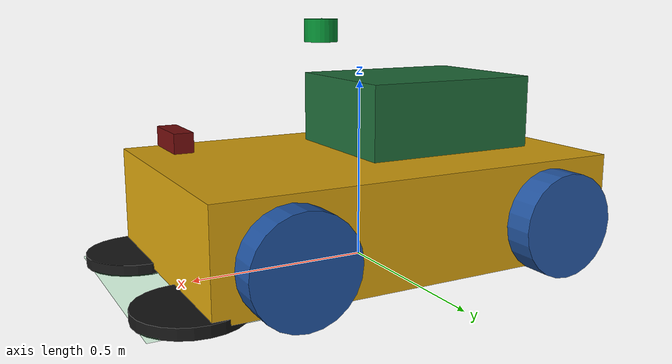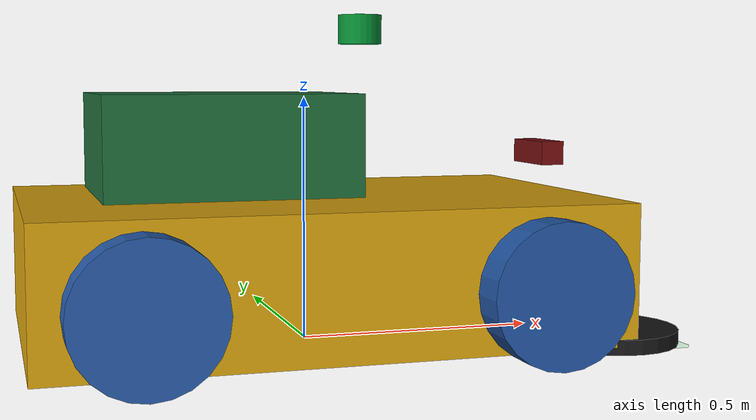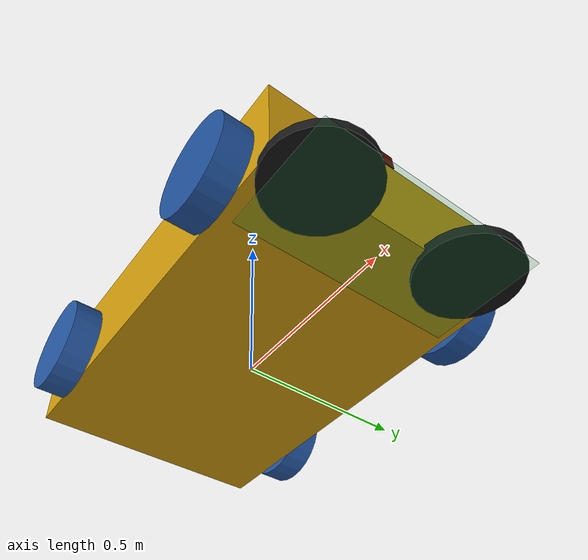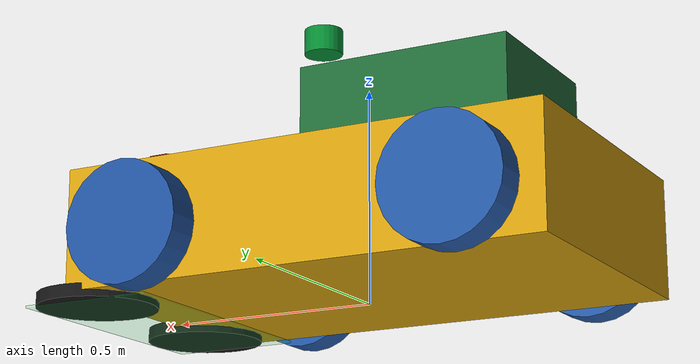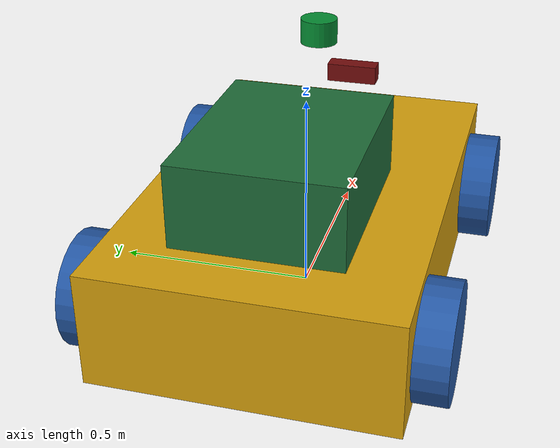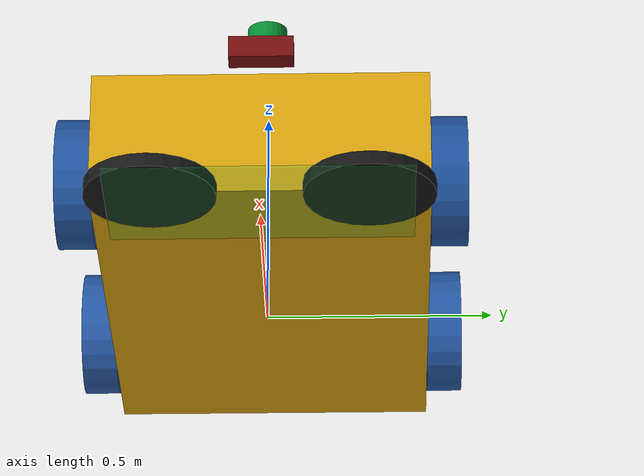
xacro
<?xml version="1.0"?>
<robot name="sanitation_vehicle" xmlns:xacro="http://ros.org/wiki/xacro">

  <!-- Reuse maintained Linorobot2 macros without modifying upstream source. -->
  <xacro:include filename="$(find linorobot2_description)/urdf/sensors/imu.urdf.xacro"/>
  <xacro:include filename="$(find linorobot2_description)/urdf/controllers/skid_steer.urdf.xacro"/>

  <!-- Baseline geometry; replace with measured real vehicle values later. -->
  <xacro:property name="base_length" value="1.15"/>
  <xacro:property name="base_width" value="0.72"/>
  <xacro:property name="base_height" value="0.28"/>
  <xacro:property name="base_mass" value="80.0"/>
  <xacro:property name="wheel_radius" value="0.14"/>
  <xacro:property name="wheel_width" value="0.08"/>
  <xacro:property name="wheel_pos_x" value="0.38"/>
  <xacro:property name="wheel_pos_y" value="0.40"/>
  <xacro:property name="wheel_pos_z" value="-0.02"/>
  <xacro:property name="wheel_mass" value="3.0"/>
  <xacro:property name="cleaning_width" value="0.65"/>

  <!-- Local primitive chassis avoids the upstream Gazebo-classic visual
       override colliding with URDF materials in Ogre2 / Gazebo Harmonic. -->
  <link name="base_footprint"/>
  <link name="base_link">
    <visual>
      <geometry><box size="${base_length} ${base_width} ${base_height}"/></geometry>
      <material name="sanitation_chassis_yellow">
        <color rgba="0.84 0.63 0.05 1.0"/>
      </material>
    </visual>
    <collision>
      <geometry><box size="${base_length} ${base_width} ${base_height}"/></geometry>
    </collision>
    <inertial>
      <mass value="${base_mass}"/>
      <inertia
        ixx="${(base_mass / 12.0) * (base_width**2 + base_height**2)}"
        ixy="0" ixz="0"
        iyy="${(base_mass / 12.0) * (base_length**2 + base_height**2)}"
        iyz="0"
        izz="${(base_mass / 12.0) * (base_length**2 + base_width**2)}"/>
    </inertial>
  </link>
  <joint name="base_to_footprint" type="fixed">
    <parent link="base_footprint"/>
    <child link="base_link"/>
    <origin xyz="0 0 ${wheel_radius - wheel_pos_z}" rpy="0 0 0"/>
  </joint>

  <xacro:macro name="sanitation_wheel" params="side pos_x pos_y red green blue">
    <link name="${side}_wheel_link">
      <visual>
        <origin rpy="${pi / 2.0} 0 0"/>
        <geometry><cylinder radius="${wheel_radius}" length="${wheel_width}"/></geometry>
        <material name="${side}_wheel_material">
          <color rgba="${red} ${green} ${blue} 1.0"/>
        </material>
      </visual>
      <collision>
        <origin rpy="${pi / 2.0} 0 0"/>
        <geometry><cylinder radius="${wheel_radius}" length="${wheel_width}"/></geometry>
      </collision>
      <inertial>
        <mass value="${wheel_mass}"/>
        <inertia
          ixx="${(wheel_mass / 12.0) * (3.0 * wheel_radius**2 + wheel_width**2)}"
          ixy="0" ixz="0"
          iyy="${0.5 * wheel_mass * wheel_radius**2}"
          iyz="0"
          izz="${(wheel_mass / 12.0) * (3.0 * wheel_radius**2 + wheel_width**2)}"/>
      </inertial>
    </link>
    <joint name="${side}_wheel_joint" type="continuous">
      <axis xyz="0 1 0"/>
      <parent link="base_link"/>
      <child link="${side}_wheel_link"/>
      <origin xyz="${pos_x} ${pos_y} ${wheel_pos_z}" rpy="0 0 0"/>
    </joint>
  </xacro:macro>

  <xacro:sanitation_wheel side="front_left" pos_x="${wheel_pos_x}" pos_y="${wheel_pos_y}"
    red="0.12" green="0.32" blue="0.62"/>
  <xacro:sanitation_wheel side="front_right" pos_x="${wheel_pos_x}" pos_y="${-wheel_pos_y}"
    red="0.13" green="0.33" blue="0.63"/>
  <xacro:sanitation_wheel side="rear_left" pos_x="${-wheel_pos_x}" pos_y="${wheel_pos_y}"
    red="0.14" green="0.34" blue="0.64"/>
  <xacro:sanitation_wheel side="rear_right" pos_x="${-wheel_pos_x}" pos_y="${-wheel_pos_y}"
    red="0.15" green="0.35" blue="0.65"/>

  <xacro:imu/>

  <link name="laser">
    <visual>
      <geometry><cylinder radius="0.045" length="0.06"/></geometry>
      <material name="sanitation_lidar_green"><color rgba="0.02 0.55 0.20 1.0"/></material>
    </visual>
    <collision><geometry><cylinder radius="0.045" length="0.06"/></geometry></collision>
    <inertial>
      <mass value="0.1"/>
      <inertia ixx="0.00006" ixy="0" ixz="0" iyy="0.00006" iyz="0" izz="0.00010"/>
    </inertial>
  </link>
  <joint name="laser_to_base_link" type="fixed">
    <parent link="base_link"/>
    <child link="laser"/>
    <origin xyz="0.12 0 0.48" rpy="0 0 0"/>
  </joint>
  <gazebo reference="laser">
    <sensor name="sanitation_gpu_lidar" type="gpu_lidar">
      <topic>scan</topic>
      <update_rate>10</update_rate>
      <always_on>true</always_on>
      <visualize>true</visualize>
      <lidar>
        <scan>
          <horizontal>
            <samples>360</samples>
            <resolution>1</resolution>
            <min_angle>-3.1416</min_angle>
            <max_angle>3.1416</max_angle>
          </horizontal>
          <vertical>
            <samples>1</samples>
            <resolution>1</resolution>
            <min_angle>0.0</min_angle>
            <max_angle>0.0</max_angle>
          </vertical>
        </scan>
        <range><min>0.08</min><max>12.0</max><resolution>0.01</resolution></range>
      </lidar>
    </sensor>
  </gazebo>

  <link name="camera_link">
    <visual>
      <geometry><box size="0.05 0.14 0.05"/></geometry>
      <material name="sanitation_camera_red"><color rgba="0.45 0.05 0.05 1.0"/></material>
    </visual>
    <collision><geometry><box size="0.05 0.14 0.05"/></geometry></collision>
    <inertial>
      <mass value="0.135"/>
      <inertia ixx="0.00025" ixy="0" ixz="0" iyy="0.00006" iyz="0" izz="0.00025"/>
    </inertial>
  </link>
  <joint name="camera_to_base_link" type="fixed">
    <parent link="base_link"/>
    <child link="camera_link"/>
    <origin xyz="0.53 0 0.22" rpy="0 0 0"/>
  </joint>
  <link name="camera_depth_link"/>
  <joint name="camera_depth_joint" type="fixed">
    <parent link="camera_link"/>
    <child link="camera_depth_link"/>
    <origin xyz="0 0 0" rpy="0 0 0"/>
  </joint>
  <gazebo reference="camera_link">
    <sensor name="sanitation_rgbd_camera" type="rgbd_camera">
      <topic>camera</topic>
      <update_rate>15</update_rate>
      <always_on>true</always_on>
      <visualize>true</visualize>
      <camera>
        <optical_frame_id>camera_depth_link</optical_frame_id>
        <horizontal_fov>1.50098</horizontal_fov>
        <image><width>640</width><height>480</height><format>R8G8B8</format></image>
        <clip><near>0.3</near><far>100</far></clip>
      </camera>
    </sensor>
  </gazebo>

  <xacro:diff_drive_controller
    wheel_separation="${wheel_pos_y * 2.0}"
    wheel_radius="${wheel_radius}"
  />

  <!-- 40 L bin: 0.50 * 0.40 * 0.20 = 0.040 m^3. -->
  <link name="dust_bin_link">
    <visual>
      <origin xyz="0 0 0"/>
      <geometry><box size="0.50 0.40 0.20"/></geometry>
      <material name="bin_green"><color rgba="0.12 0.42 0.22 1.0"/></material>
    </visual>
    <collision>
      <origin xyz="0 0 0"/>
      <geometry><box size="0.50 0.40 0.20"/></geometry>
    </collision>
    <inertial>
      <mass value="8.0"/>
      <inertia ixx="0.133" ixy="0" ixz="0" iyy="0.193" iyz="0" izz="0.273"/>
    </inertial>
  </link>
  <joint name="dust_bin_joint" type="fixed">
    <parent link="base_link"/>
    <child link="dust_bin_link"/>
    <origin xyz="-0.18 0 0.25" rpy="0 0 0"/>
  </joint>

  <!-- Side brushes are fixed visual/collision placeholders in Stage 2.
       Codex should add controllable joints/cleaning semantics later. -->
  <link name="left_brush_link">
    <visual>
      <geometry><cylinder radius="0.14" length="0.03"/></geometry>
      <material name="left_brush_dark"><color rgba="0.08 0.08 0.08 1.0"/></material>
    </visual>
    <collision><geometry><cylinder radius="0.14" length="0.03"/></geometry></collision>
    <inertial>
      <mass value="1.0"/>
      <inertia ixx="0.00495" ixy="0" ixz="0" iyy="0.00495" iyz="0" izz="0.0098"/>
    </inertial>
  </link>
  <joint name="left_brush_joint" type="fixed">
    <parent link="base_link"/>
    <child link="left_brush_link"/>
    <origin xyz="0.58 0.23 -0.14" rpy="0 0 0"/>
  </joint>

  <link name="right_brush_link">
    <visual>
      <geometry><cylinder radius="0.14" length="0.03"/></geometry>
      <material name="right_brush_dark"><color rgba="0.09 0.09 0.09 1.0"/></material>
    </visual>
    <collision><geometry><cylinder radius="0.14" length="0.03"/></geometry></collision>
    <inertial>
      <mass value="1.0"/>
      <inertia ixx="0.00495" ixy="0" ixz="0" iyy="0.00495" iyz="0" izz="0.0098"/>
    </inertial>
  </link>
  <joint name="right_brush_joint" type="fixed">
    <parent link="base_link"/>
    <child link="right_brush_link"/>
    <origin xyz="0.58 -0.23 -0.14" rpy="0 0 0"/>
  </joint>

  <!-- Non-colliding visualization of the nominal cleaning footprint. -->
  <link name="cleaning_footprint_link">
    <visual>
      <origin xyz="0 0 0"/>
      <geometry><box size="0.32 ${cleaning_width} 0.005"/></geometry>
      <material name="cleaning_zone"><color rgba="0.1 0.8 0.3 0.18"/></material>
    </visual>
  </link>
  <joint name="cleaning_footprint_joint" type="fixed">
    <parent link="base_link"/>
    <child link="cleaning_footprint_link"/>
    <origin xyz="0.55 0 -0.155" rpy="0 0 0"/>
  </joint>

  <!-- Mounting point reserved for a future manipulator. -->
  <link name="arm_mount_link"/>
  <joint name="arm_mount_joint" type="fixed">
    <parent link="base_link"/>
    <child link="arm_mount_link"/>
    <origin xyz="0.10 0 0.32" rpy="0 0 0"/>
  </joint>

</robot>

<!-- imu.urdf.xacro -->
<robot xmlns:xacro="http://ros.org/wiki/xacro">
  <xacro:macro name="imu">
    <link name="imu_link"/>

    <joint name="imu_to_base_link" type="fixed">
      <parent link="base_link"/>
      <child link="imu_link"/>
      <origin xyz="0 0 0" rpy="0 0 0"/>
    </joint>

    <gazebo>
      <plugin filename="gz-sim-imu-system" name="gz::sim::systems::Imu">
      </plugin>
    </gazebo>

    <gazebo reference="imu_link">
      <sensor name="imu_sensor" type="imu">
        <topic>$(arg namespace)/imu/data</topic>
        <update_rate>50</update_rate>
        <always_on>true</always_on>
        <visualize>true</visualize>
      </sensor>
    </gazebo>
  </xacro:macro>
</robot>
